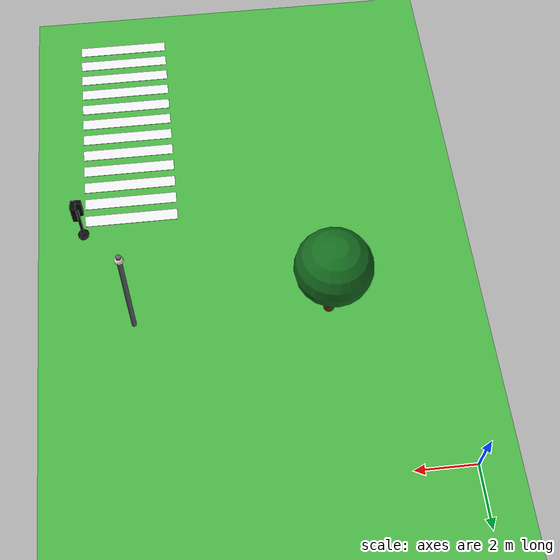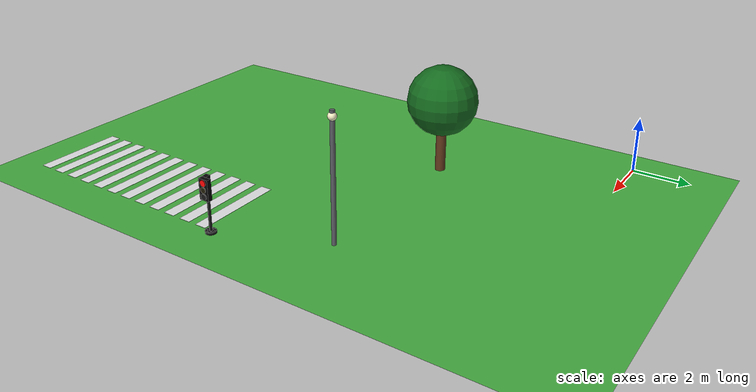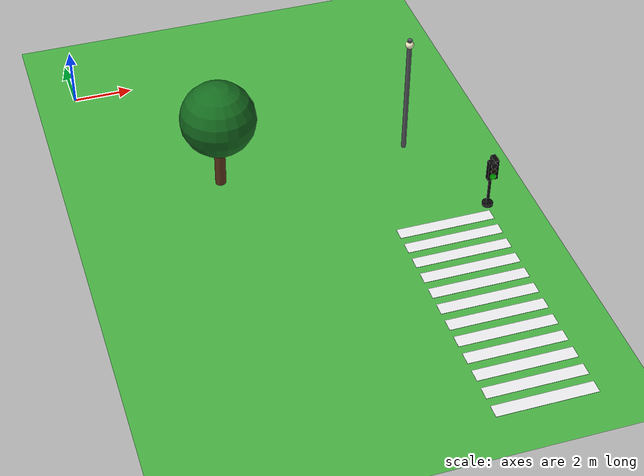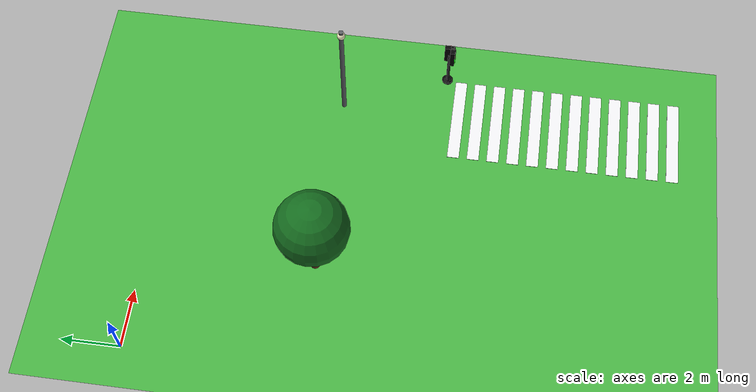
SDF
<sdf version="1.10">
 <world name="city_second">
  <model name="ground_plane">
   <static>true</static>
   <link name="link">
    <collision name="collision">
     <geometry><plane><normal>0 0 1</normal><size>300 300</size></plane></geometry>
    </collision>
    <visual name="visual">
     <geometry><plane><normal>0 0 1</normal><size>300 300</size></plane></geometry>
     <material>
      <ambient>0.280000001 0.689999998 0.25999999 1</ambient>
      <diffuse>0.280000001 0.689999998 0.25999999 1</diffuse>
      <specular>0.0299999993 0.0299999993 0.0299999993 1</specular>
     </material>
    </visual>
    <inertial>
     <mass>1</mass>
     <inertia><ixx>1</ixx><ixy>0</ixy><ixz>0</ixz><iyy>1</iyy><iyz>0</iyz><izz>1</izz></inertia>
    </inertial>
   </link>
  </model>
  <model name="crosswalk_v_2_1_east_5_3">
   <static>true</static>
   <pose>10.1084 -13.809400000000002 0.017000000000000001 0 0 0</pose>
   <link name="stripe_1">
    <collision name="collision">
     <geometry><box><size>3.2000000000000002 0.41999999999999998 0.01</size></box></geometry>
    </collision>
    <visual name="visual">
     <geometry><box><size>3.2000000000000002 0.41999999999999998 0.01</size></box></geometry>
     <material>
      <ambient>0.920000017 0.920000017 0.930000007 1</ambient>
      <diffuse>0.920000017 0.920000017 0.930000007 1</diffuse>
      <specular>0.0299999993 0.0299999993 0.0299999993 1</specular>
     </material>
    </visual>
    <pose>0 -3.8500000000000001 0 0 0 0</pose>
    <inertial>
     <mass>1</mass>
     <inertia><ixx>1</ixx><ixy>0</ixy><ixz>0</ixz><iyy>1</iyy><iyz>0</iyz><izz>1</izz></inertia>
    </inertial>
   </link>
   <link name="stripe_2">
    <collision name="collision">
     <geometry><box><size>3.2000000000000002 0.41999999999999998 0.01</size></box></geometry>
    </collision>
    <visual name="visual">
     <geometry><box><size>3.2000000000000002 0.41999999999999998 0.01</size></box></geometry>
     <material>
      <ambient>0.920000017 0.920000017 0.930000007 1</ambient>
      <diffuse>0.920000017 0.920000017 0.930000007 1</diffuse>
      <specular>0.0299999993 0.0299999993 0.0299999993 1</specular>
     </material>
    </visual>
    <pose>0 -3.1499999999999968 0 0 0 0</pose>
    <inertial>
     <mass>1</mass>
     <inertia><ixx>1</ixx><ixy>0</ixy><ixz>0</ixz><iyy>1</iyy><iyz>0</iyz><izz>1</izz></inertia>
    </inertial>
   </link>
   <link name="stripe_3">
    <collision name="collision">
     <geometry><box><size>3.2000000000000002 0.41999999999999998 0.01</size></box></geometry>
    </collision>
    <visual name="visual">
     <geometry><box><size>3.2000000000000002 0.41999999999999998 0.01</size></box></geometry>
     <material>
      <ambient>0.920000017 0.920000017 0.930000007 1</ambient>
      <diffuse>0.920000017 0.920000017 0.930000007 1</diffuse>
      <specular>0.0299999993 0.0299999993 0.0299999993 1</specular>
     </material>
    </visual>
    <pose>0 -2.4499999999999975 0 0 0 0</pose>
    <inertial>
     <mass>1</mass>
     <inertia><ixx>1</ixx><ixy>0</ixy><ixz>0</ixz><iyy>1</iyy><iyz>0</iyz><izz>1</izz></inertia>
    </inertial>
   </link>
   <link name="stripe_4">
    <collision name="collision">
     <geometry><box><size>3.2000000000000002 0.41999999999999998 0.01</size></box></geometry>
    </collision>
    <visual name="visual">
     <geometry><box><size>3.2000000000000002 0.41999999999999998 0.01</size></box></geometry>
     <material>
      <ambient>0.920000017 0.920000017 0.930000007 1</ambient>
      <diffuse>0.920000017 0.920000017 0.930000007 1</diffuse>
      <specular>0.0299999993 0.0299999993 0.0299999993 1</specular>
     </material>
    </visual>
    <pose>0 -1.7499999999999982 0 0 0 0</pose>
    <inertial>
     <mass>1</mass>
     <inertia><ixx>1</ixx><ixy>0</ixy><ixz>0</ixz><iyy>1</iyy><iyz>0</iyz><izz>1</izz></inertia>
    </inertial>
   </link>
   <link name="stripe_5">
    <collision name="collision">
     <geometry><box><size>3.2000000000000002 0.41999999999999998 0.01</size></box></geometry>
    </collision>
    <visual name="visual">
     <geometry><box><size>3.2000000000000002 0.41999999999999998 0.01</size></box></geometry>
     <material>
      <ambient>0.920000017 0.920000017 0.930000007 1</ambient>
      <diffuse>0.920000017 0.920000017 0.930000007 1</diffuse>
      <specular>0.0299999993 0.0299999993 0.0299999993 1</specular>
     </material>
    </visual>
    <pose>0 -1.0499999999999989 0 0 0 0</pose>
    <inertial>
     <mass>1</mass>
     <inertia><ixx>1</ixx><ixy>0</ixy><ixz>0</ixz><iyy>1</iyy><iyz>0</iyz><izz>1</izz></inertia>
    </inertial>
   </link>
   <link name="stripe_6">
    <collision name="collision">
     <geometry><box><size>3.2000000000000002 0.41999999999999998 0.01</size></box></geometry>
    </collision>
    <visual name="visual">
     <geometry><box><size>3.2000000000000002 0.41999999999999998 0.01</size></box></geometry>
     <material>
      <ambient>0.920000017 0.920000017 0.930000007 1</ambient>
      <diffuse>0.920000017 0.920000017 0.930000007 1</diffuse>
      <specular>0.0299999993 0.0299999993 0.0299999993 1</specular>
     </material>
    </visual>
    <pose>0 -0.34999999999999787 0 0 0 0</pose>
    <inertial>
     <mass>1</mass>
     <inertia><ixx>1</ixx><ixy>0</ixy><ixz>0</ixz><iyy>1</iyy><iyz>0</iyz><izz>1</izz></inertia>
    </inertial>
   </link>
   <link name="stripe_7">
    <collision name="collision">
     <geometry><box><size>3.2000000000000002 0.41999999999999998 0.01</size></box></geometry>
    </collision>
    <visual name="visual">
     <geometry><box><size>3.2000000000000002 0.41999999999999998 0.01</size></box></geometry>
     <material>
      <ambient>0.920000017 0.920000017 0.930000007 1</ambient>
      <diffuse>0.920000017 0.920000017 0.930000007 1</diffuse>
      <specular>0.0299999993 0.0299999993 0.0299999993 1</specular>
     </material>
    </visual>
    <pose>0 0.35000000000000142 0 0 0 0</pose>
    <inertial>
     <mass>1</mass>
     <inertia><ixx>1</ixx><ixy>0</ixy><ixz>0</ixz><iyy>1</iyy><iyz>0</iyz><izz>1</izz></inertia>
    </inertial>
   </link>
   <link name="stripe_8">
    <collision name="collision">
     <geometry><box><size>3.2000000000000002 0.41999999999999998 0.01</size></box></geometry>
    </collision>
    <visual name="visual">
     <geometry><box><size>3.2000000000000002 0.41999999999999998 0.01</size></box></geometry>
     <material>
      <ambient>0.920000017 0.920000017 0.930000007 1</ambient>
      <diffuse>0.920000017 0.920000017 0.930000007 1</diffuse>
      <specular>0.0299999993 0.0299999993 0.0299999993 1</specular>
     </material>
    </visual>
    <pose>0 1.0500000000000025 0 0 0 0</pose>
    <inertial>
     <mass>1</mass>
     <inertia><ixx>1</ixx><ixy>0</ixy><ixz>0</ixz><iyy>1</iyy><iyz>0</iyz><izz>1</izz></inertia>
    </inertial>
   </link>
   <link name="stripe_9">
    <collision name="collision">
     <geometry><box><size>3.2000000000000002 0.41999999999999998 0.01</size></box></geometry>
    </collision>
    <visual name="visual">
     <geometry><box><size>3.2000000000000002 0.41999999999999998 0.01</size></box></geometry>
     <material>
      <ambient>0.920000017 0.920000017 0.930000007 1</ambient>
      <diffuse>0.920000017 0.920000017 0.930000007 1</diffuse>
      <specular>0.0299999993 0.0299999993 0.0299999993 1</specular>
     </material>
    </visual>
    <pose>0 1.7500000000000018 0 0 0 0</pose>
    <inertial>
     <mass>1</mass>
     <inertia><ixx>1</ixx><ixy>0</ixy><ixz>0</ixz><iyy>1</iyy><iyz>0</iyz><izz>1</izz></inertia>
    </inertial>
   </link>
   <link name="stripe_10">
    <collision name="collision">
     <geometry><box><size>3.2000000000000002 0.41999999999999998 0.01</size></box></geometry>
    </collision>
    <visual name="visual">
     <geometry><box><size>3.2000000000000002 0.41999999999999998 0.01</size></box></geometry>
     <material>
      <ambient>0.920000017 0.920000017 0.930000007 1</ambient>
      <diffuse>0.920000017 0.920000017 0.930000007 1</diffuse>
      <specular>0.0299999993 0.0299999993 0.0299999993 1</specular>
     </material>
    </visual>
    <pose>0 2.4500000000000011 0 0 0 0</pose>
    <inertial>
     <mass>1</mass>
     <inertia><ixx>1</ixx><ixy>0</ixy><ixz>0</ixz><iyy>1</iyy><iyz>0</iyz><izz>1</izz></inertia>
    </inertial>
   </link>
   <link name="stripe_11">
    <collision name="collision">
     <geometry><box><size>3.2000000000000002 0.41999999999999998 0.01</size></box></geometry>
    </collision>
    <visual name="visual">
     <geometry><box><size>3.2000000000000002 0.41999999999999998 0.01</size></box></geometry>
     <material>
      <ambient>0.920000017 0.920000017 0.930000007 1</ambient>
      <diffuse>0.920000017 0.920000017 0.930000007 1</diffuse>
      <specular>0.0299999993 0.0299999993 0.0299999993 1</specular>
     </material>
    </visual>
    <pose>0 3.1500000000000021 0 0 0 0</pose>
    <inertial>
     <mass>1</mass>
     <inertia><ixx>1</ixx><ixy>0</ixy><ixz>0</ixz><iyy>1</iyy><iyz>0</iyz><izz>1</izz></inertia>
    </inertial>
   </link>
   <link name="stripe_12">
    <collision name="collision">
     <geometry><box><size>3.2000000000000002 0.41999999999999998 0.01</size></box></geometry>
    </collision>
    <visual name="visual">
     <geometry><box><size>3.2000000000000002 0.41999999999999998 0.01</size></box></geometry>
     <material>
      <ambient>0.920000017 0.920000017 0.930000007 1</ambient>
      <diffuse>0.920000017 0.920000017 0.930000007 1</diffuse>
      <specular>0.0299999993 0.0299999993 0.0299999993 1</specular>
     </material>
    </visual>
    <pose>0 3.8500000000000014 0 0 0 0</pose>
    <inertial>
     <mass>1</mass>
     <inertia><ixx>1</ixx><ixy>0</ixy><ixz>0</ixz><iyy>1</iyy><iyz>0</iyz><izz>1</izz></inertia>
    </inertial>
   </link>
  </model>
  <model name="lamp_1_2_9">
   <static>true</static>
   <pose>10.194599999999999 -5.8334599999999996 2.2000000000000002 0 0 0</pose>
   <link name="link">
    <collision name="collision">
     <geometry>
      <cylinder><radius>0.080000000000000002</radius><length>4.4000000000000004</length></cylinder>
     </geometry>
    </collision>
    <visual name="pole">
     <geometry>
      <cylinder><radius>0.080000000000000002</radius><length>4.4000000000000004</length></cylinder>
     </geometry>
     <material>
      <ambient>0.349999994 0.360000014 0.379999995 1</ambient>
      <diffuse>0.349999994 0.360000014 0.379999995 1</diffuse>
      <specular>0.0299999993 0.0299999993 0.0299999993 1</specular>
     </material>
    </visual>
    <visual name="lamp_head">
     <pose>0 0 2 0 0 0</pose>
     <geometry><sphere><radius>0.14000000000000001</radius></sphere></geometry>
     <material>
      <ambient>0.959999979 0.939999998 0.779999971 1</ambient>
      <diffuse>0.959999979 0.939999998 0.779999971 1</diffuse>
      <specular>0.0299999993 0.0299999993 0.0299999993 1</specular>
     </material>
    </visual>
    <inertial>
     <mass>1</mass>
     <inertia><ixx>1</ixx><ixy>0</ixy><ixz>0</ixz><iyy>1</iyy><iyz>0</iyz><izz>1</izz></inertia>
    </inertial>
   </link>
  </model>
  <model name="Oak tree_3">
   <static>true</static>
   <pose>3.7745000000000002 -5.8038400000000001 0 0 0 0</pose>
   <link name="link">
    <collision name="footprint">
     <pose>0 0 0.050000000000000003 0 0 0</pose>
     <geometry>
      <cylinder><radius>0.90000000000000002</radius><length>0.10000000000000001</length></cylinder>
     </geometry>
    </collision>
    <visual name="trunk">
     <pose>0 0 1.1000000000000001 0 0 0</pose>
     <geometry>
      <cylinder><radius>0.17999999999999999</radius><length>2.2000000000000002</length></cylinder>
     </geometry>
     <material>
      <ambient>0.379999995 0.219999999 0.109999999 1</ambient>
      <diffuse>0.379999995 0.219999999 0.109999999 1</diffuse>
      <specular>0.119999997 0.119999997 0.119999997 1</specular>
      <emissive>0 0 0 1</emissive>
     </material>
    </visual>
    <visual name="crown">
     <pose>0 0 2.6499999999999999 0 0 0</pose>
     <geometry><sphere><radius>1.25</radius></sphere></geometry>
     <material>
      <ambient>0.0799999982 0.419999987 0.119999997 1</ambient>
      <diffuse>0.0799999982 0.419999987 0.119999997 1</diffuse>
      <specular>0.119999997 0.119999997 0.119999997 1</specular>
      <emissive>0 0 0 1</emissive>
     </material>
    </visual>
    <inertial>
     <mass>1</mass>
     <inertia><ixx>1</ixx><ixy>0</ixy><ixz>0</ixz><iyy>1</iyy><iyz>0</iyz><izz>1</izz></inertia>
    </inertial>
   </link>
  </model>
  <model name="simple_traffic_light_red_east_2">
   <static>true</static>
   <pose>11.774926698468439 -9.4165716174160607 -2.7755575615628914e-17 0 0 -1.5707999672671753</pose>
   <link name="base">
    <pose>0 0 0.040000000000000001 0 0 0</pose>
    <collision name="collision">
     <geometry>
      <cylinder><radius>0.17999999999999999</radius><length>0.080000000000000002</length></cylinder>
     </geometry>
    </collision>
    <visual name="visual">
     <geometry>
      <cylinder><radius>0.17999999999999999</radius><length>0.080000000000000002</length></cylinder>
     </geometry>
     <material>
      <ambient>0.0799999982 0.0799999982 0.0799999982 1</ambient>
      <diffuse>0.0799999982 0.0799999982 0.0799999982 1</diffuse>
      <specular>0.150000006 0.150000006 0.150000006 1</specular>
      <emissive>0 0 0 1</emissive>
     </material>
    </visual>
    <inertial>
     <mass>1</mass>
     <inertia><ixx>1</ixx><ixy>0</ixy><ixz>0</ixz><iyy>1</iyy><iyz>0</iyz><izz>1</izz></inertia>
    </inertial>
   </link>
   <link name="pole">
    <pose>-2.1316282072803006e-14 2.4868995751603507e-14 0.80000000000000004 0 0 -1.1102230246251565e-16</pose>
    <collision name="collision">
     <geometry>
      <cylinder><radius>0.044999999999999998</radius><length>1.6000000000000001</length></cylinder>
     </geometry>
    </collision>
    <visual name="visual">
     <geometry>
      <cylinder><radius>0.044999999999999998</radius><length>1.6000000000000001</length></cylinder>
     </geometry>
     <material>
      <ambient>0.0799999982 0.0799999982 0.0799999982 1</ambient>
      <diffuse>0.0799999982 0.0799999982 0.0799999982 1</diffuse>
      <specular>0.150000006 0.150000006 0.150000006 1</specular>
      <emissive>0 0 0 1</emissive>
     </material>
    </visual>
    <inertial>
     <mass>1</mass>
     <inertia><ixx>1</ixx><ixy>0</ixy><ixz>0</ixz><iyy>1</iyy><iyz>0</iyz><izz>1</izz></inertia>
    </inertial>
   </link>
   <link name="signal_box">
    <pose>0 0.090000000000019398 1.5500000000000003 0 0 -1.1102230246251565e-16</pose>
    <collision name="collision">
     <geometry><box><size>0.34000000000000002 0.16 0.71999999999999997</size></box></geometry>
    </collision>
    <visual name="visual">
     <geometry><box><size>0.34000000000000002 0.16 0.71999999999999997</size></box></geometry>
     <material>
      <ambient>0.0199999996 0.0199999996 0.0199999996 1</ambient>
      <diffuse>0.0199999996 0.0199999996 0.0199999996 1</diffuse>
      <specular>0.150000006 0.150000006 0.150000006 1</specular>
      <emissive>0 0 0 1</emissive>
     </material>
    </visual>
    <inertial>
     <mass>1</mass>
     <inertia><ixx>1</ixx><ixy>0</ixy><ixz>0</ixz><iyy>1</iyy><iyz>0</iyz><izz>1</izz></inertia>
    </inertial>
   </link>
   <link name="red_lens">
    <pose>-2.8421709430404007e-14 0.18100000000002581 1.7800000000000002 1.5707963268000005 -7.8504622949614379e-17 6.0448559659323335e-15</pose>
    <collision name="collision">
     <geometry><cylinder><radius>0.105</radius><length>0.035000000000000003</length></cylinder></geometry>
    </collision>
    <visual name="visual">
     <geometry><cylinder><radius>0.105</radius><length>0.035000000000000003</length></cylinder></geometry>
     <material>
      <ambient>1 0.0199999996 0.0199999996 1</ambient>
      <diffuse>1 0.0199999996 0.0199999996 1</diffuse>
      <specular>0.150000006 0.150000006 0.150000006 1</specular>
      <emissive>1 0.0199999996 0.0199999996 1</emissive>
     </material>
    </visual>
    <inertial>
     <mass>1</mass>
     <inertia><ixx>1</ixx><ixy>0</ixy><ixz>0</ixz><iyy>1</iyy><iyz>0</iyz><izz>1</izz></inertia>
    </inertial>
   </link>
   <link name="yellow_lens">
    <pose>-1.9539925233402755e-14 0.1820000000000217 1.5500000000000003 1.5707963268000005 -7.8504622949614379e-17 6.0448559659323335e-15</pose>
    <collision name="collision">
     <geometry>
      <cylinder><radius>0.095000000000000001</radius><length>0.035000000000000003</length></cylinder>
     </geometry>
    </collision>
    <visual name="visual">
     <geometry>
      <cylinder><radius>0.095000000000000001</radius><length>0.035000000000000003</length></cylinder>
     </geometry>
     <material>
      <ambient>0.119999997 0.100000001 0.0199999996 1</ambient>
      <diffuse>0.119999997 0.100000001 0.0199999996 1</diffuse>
      <specular>0.150000006 0.150000006 0.150000006 1</specular>
      <emissive>0 0 0 1</emissive>
     </material>
    </visual>
    <inertial>
     <mass>1</mass>
     <inertia><ixx>1</ixx><ixy>0</ixy><ixz>0</ixz><iyy>1</iyy><iyz>0</iyz><izz>1</izz></inertia>
    </inertial>
   </link>
   <link name="green_lens">
    <pose>-5.3290705182007514e-15 0.18300000000002647 1.3199999999999998 1.5707963268000005 -7.8504622949614379e-17 6.0448559659323335e-15</pose>
    <collision name="collision">
     <geometry><cylinder><radius>0.105</radius><length>0.035000000000000003</length></cylinder></geometry>
    </collision>
    <visual name="visual">
     <geometry><cylinder><radius>0.105</radius><length>0.035000000000000003</length></cylinder></geometry>
     <material>
      <ambient>0.0799999982 0.0799999982 0.0799999982 1</ambient>
      <diffuse>0.0799999982 0.0799999982 0.0799999982 1</diffuse>
      <specular>0.150000006 0.150000006 0.150000006 1</specular>
      <emissive>0 0 0 1</emissive>
     </material>
    </visual>
    <inertial>
     <mass>1</mass>
     <inertia><ixx>1</ixx><ixy>0</ixy><ixz>0</ixz><iyy>1</iyy><iyz>0</iyz><izz>1</izz></inertia>
    </inertial>
   </link>
  </model>
  <model name="simple_traffic_light_green_south_1_3">
   <static>true</static>
   <pose>11.765058665459204 -9.44188907987707 0 0 0 -3.1415900000000754</pose>
   <link name="base">
    <pose>0 0 0.040000000000000001 0 0 0</pose>
    <collision name="collision">
     <geometry>
      <cylinder><radius>0.17999999999999999</radius><length>0.080000000000000002</length></cylinder>
     </geometry>
    </collision>
    <visual name="visual">
     <geometry>
      <cylinder><radius>0.17999999999999999</radius><length>0.080000000000000002</length></cylinder>
     </geometry>
     <material>
      <ambient>0.0799999982 0.0799999982 0.0799999982 1</ambient>
      <diffuse>0.0799999982 0.0799999982 0.0799999982 1</diffuse>
      <specular>0.150000006 0.150000006 0.150000006 1</specular>
      <emissive>0 0 0 1</emissive>
     </material>
    </visual>
    <inertial>
     <mass>1</mass>
     <inertia><ixx>1</ixx><ixy>0</ixy><ixz>0</ixz><iyy>1</iyy><iyz>0</iyz><izz>1</izz></inertia>
    </inertial>
   </link>
   <link name="pole">
    <pose>-1.5987211554602254e-14 -3.1974423109204508e-14 0.80000000000000104 0 0 0</pose>
    <collision name="collision">
     <geometry>
      <cylinder><radius>0.044999999999999998</radius><length>1.6000000000000001</length></cylinder>
     </geometry>
    </collision>
    <visual name="visual">
     <geometry>
      <cylinder><radius>0.044999999999999998</radius><length>1.6000000000000001</length></cylinder>
     </geometry>
     <material>
      <ambient>0.0799999982 0.0799999982 0.0799999982 1</ambient>
      <diffuse>0.0799999982 0.0799999982 0.0799999982 1</diffuse>
      <specular>0.150000006 0.150000006 0.150000006 1</specular>
      <emissive>0 0 0 1</emissive>
     </material>
    </visual>
    <inertial>
     <mass>1</mass>
     <inertia><ixx>1</ixx><ixy>0</ixy><ixz>0</ixz><iyy>1</iyy><iyz>0</iyz><izz>1</izz></inertia>
    </inertial>
   </link>
   <link name="signal_box">
    <pose>-1.5987211554602254e-14 0.089999999999983871 1.550000000000002 0 0 0</pose>
    <collision name="collision">
     <geometry><box><size>0.34000000000000002 0.16 0.71999999999999997</size></box></geometry>
    </collision>
    <visual name="visual">
     <geometry><box><size>0.34000000000000002 0.16 0.71999999999999997</size></box></geometry>
     <material>
      <ambient>0.0199999996 0.0199999996 0.0199999996 1</ambient>
      <diffuse>0.0199999996 0.0199999996 0.0199999996 1</diffuse>
      <specular>0.150000006 0.150000006 0.150000006 1</specular>
      <emissive>0 0 0 1</emissive>
     </material>
    </visual>
    <inertial>
     <mass>1</mass>
     <inertia><ixx>1</ixx><ixy>0</ixy><ixz>0</ixz><iyy>1</iyy><iyz>0</iyz><izz>1</izz></inertia>
    </inertial>
   </link>
   <link name="red_lens">
    <pose>-1.5987211554602254e-14 0.18099999999996896 1.78 1.5707963267999998 1.2475048931562623e-16 -1.2475078878636004e-16</pose>
    <collision name="collision">
     <geometry><cylinder><radius>0.105</radius><length>0.035000000000000003</length></cylinder></geometry>
    </collision>
    <visual name="visual">
     <geometry><cylinder><radius>0.105</radius><length>0.035000000000000003</length></cylinder></geometry>
     <material>
      <ambient>0.0799999982 0.0799999982 0.0799999982 1</ambient>
      <diffuse>0.0799999982 0.0799999982 0.0799999982 1</diffuse>
      <specular>0.150000006 0.150000006 0.150000006 1</specular>
      <emissive>0 0 0 1</emissive>
     </material>
    </visual>
    <inertial>
     <mass>1</mass>
     <inertia><ixx>1</ixx><ixy>0</ixy><ixz>0</ixz><iyy>1</iyy><iyz>0</iyz><izz>1</izz></inertia>
    </inertial>
   </link>
   <link name="yellow_lens">
    <pose>-1.5987211554602254e-14 0.18199999999995242 1.550000000000002 1.5707963267999998 1.2475048931562623e-16 -1.2475078878636004e-16</pose>
    <collision name="collision">
     <geometry>
      <cylinder><radius>0.095000000000000001</radius><length>0.035000000000000003</length></cylinder>
     </geometry>
    </collision>
    <visual name="visual">
     <geometry>
      <cylinder><radius>0.095000000000000001</radius><length>0.035000000000000003</length></cylinder>
     </geometry>
     <material>
      <ambient>0.119999997 0.100000001 0.0199999996 1</ambient>
      <diffuse>0.119999997 0.100000001 0.0199999996 1</diffuse>
      <specular>0.150000006 0.150000006 0.150000006 1</specular>
      <emissive>0 0 0 1</emissive>
     </material>
    </visual>
    <inertial>
     <mass>1</mass>
     <inertia><ixx>1</ixx><ixy>0</ixy><ixz>0</ixz><iyy>1</iyy><iyz>0</iyz><izz>1</izz></inertia>
    </inertial>
   </link>
   <link name="green_lens">
    <pose>-1.5987211554602254e-14 0.18299999999996786 1.3200000000000021 1.5707963267999998 1.2475048931562623e-16 -1.2475078878636004e-16</pose>
    <collision name="collision">
     <geometry><cylinder><radius>0.105</radius><length>0.035000000000000003</length></cylinder></geometry>
    </collision>
    <visual name="visual">
     <geometry><cylinder><radius>0.105</radius><length>0.035000000000000003</length></cylinder></geometry>
     <material>
      <ambient>0.0199999996 1 0.0199999996 1</ambient>
      <diffuse>0.0199999996 1 0.0199999996 1</diffuse>
      <specular>0.150000006 0.150000006 0.150000006 1</specular>
      <emissive>0.0199999996 1 0.0199999996 1</emissive>
     </material>
    </visual>
    <inertial>
     <mass>1</mass>
     <inertia><ixx>1</ixx><ixy>0</ixy><ixz>0</ixz><iyy>1</iyy><iyz>0</iyz><izz>1</izz></inertia>
    </inertial>
   </link>
  </model>
 </world>
</sdf>
